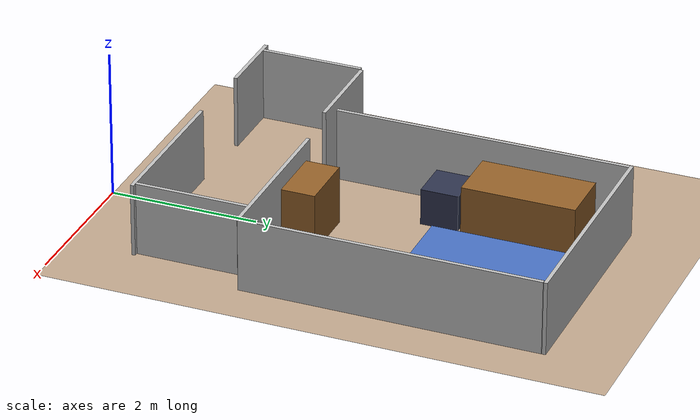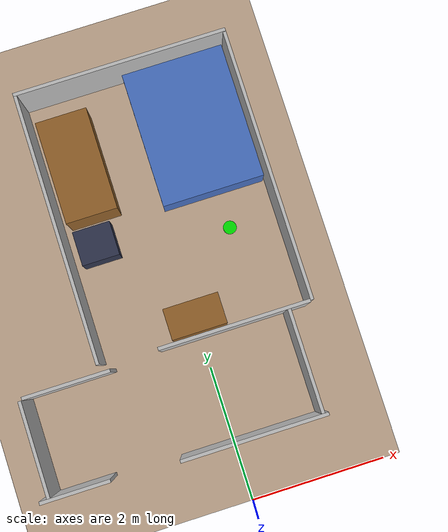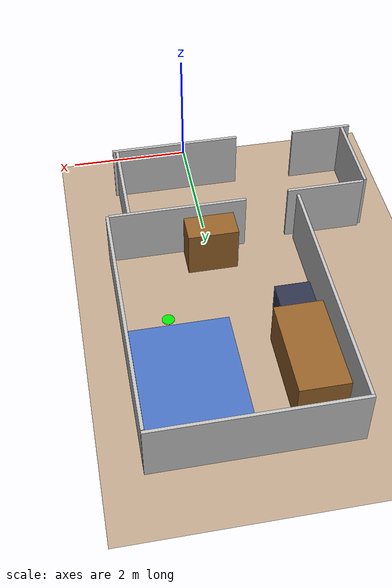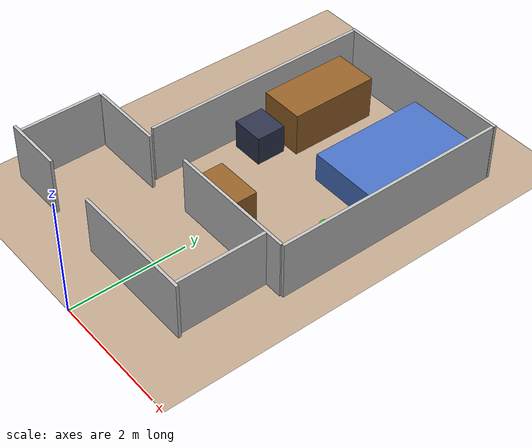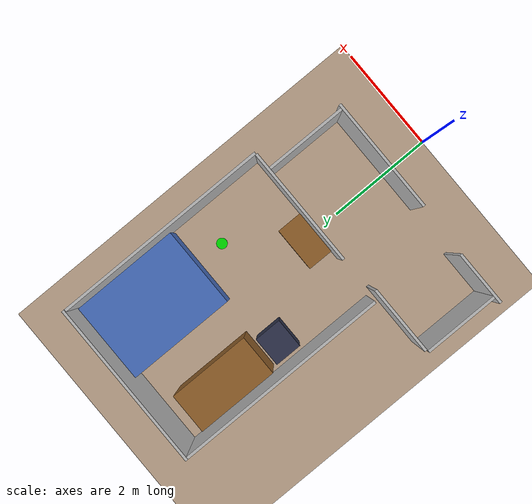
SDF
<?xml version="1.0"?>
<sdf version="1.9">
  <world name="bedroom">

    <physics name="default" type="ode">
      <real_time_update_rate>1000</real_time_update_rate>
      <max_step_size>0.001</max_step_size>
    </physics>

    <plugin filename="gz-sim-physics-system"
            name="gz::sim::systems::Physics"/>
    <plugin filename="gz-sim-sensors-system"
            name="gz::sim::systems::Sensors">
      <render_engine>ogre2</render_engine>
    </plugin>
    <plugin filename="gz-sim-scene-broadcaster-system"
            name="gz::sim::systems::SceneBroadcaster"/>
    <plugin filename="gz-sim-user-commands-system"
            name="gz::sim::systems::UserCommands"/>
    <plugin filename="gz-sim-imu-system"
            name="gz::sim::systems::Imu"/>

    <light name="sun" type="directional">
      <cast_shadows>false</cast_shadows>
      <pose>0 4 10 0 0 0</pose>
      <diffuse>0.8 0.8 0.8 1</diffuse>
      <specular>0.2 0.2 0.2 1</specular>
      <direction>-0.5 0.1 -0.9</direction>
    </light>

    <!-- Floor covering full map area X[-3.0,2.0] Y[0.2,7.3] -->
    <model name="floor">
      <static>true</static>
      <pose>-0.5 3.75 0 0 0 0</pose>
      <link name="link">
        <collision name="c">
          <geometry><plane><normal>0 0 1</normal><size>5.5 7.5</size></plane></geometry>
        </collision>
        <visual name="v">
          <geometry><plane><normal>0 0 1</normal><size>5.5 7.5</size></plane></geometry>
          <material>
            <ambient>0.60 0.52 0.42 1</ambient>
            <diffuse>0.75 0.65 0.55 1</diffuse>
          </material>
        </visual>
      </link>
    </model>

    <!-- ═══ HALLWAY WALLS ══════════════════════════════════════════════════ -->

    <model name="Hallway_West">
      <static>true</static>
      <pose>-2.6435 1.6740 0.5 0 0 0</pose>
      <link name="link">
        <collision name="c"><geometry><box><size>0.050 1.381 1.0</size></box></geometry></collision>
        <visual name="v">
          <geometry><box><size>0.050 1.381 1.0</size></box></geometry>
          <material>
            <ambient>0.60 0.60 0.60 1</ambient>
            <diffuse>0.75 0.75 0.75 1</diffuse>
          </material>
        </visual>
      </link>
    </model>

    <model name="Hallway_East">
      <static>true</static>
      <pose>1.2805 1.6930 0.5 0 0 0</pose>
      <link name="link">
        <collision name="c"><geometry><box><size>0.050 1.507 1.0</size></box></geometry></collision>
        <visual name="v">
          <geometry><box><size>0.050 1.507 1.0</size></box></geometry>
          <material>
            <ambient>0.60 0.60 0.60 1</ambient>
            <diffuse>0.75 0.75 0.75 1</diffuse>
          </material>
        </visual>
      </link>
    </model>

    <model name="Hallway_South_W">
      <static>true</static>
      <pose>-2.2747 0.9584 0.5 0 0 0</pose>
      <link name="link">
        <collision name="c"><geometry><box><size>1.016 0.050 1.0</size></box></geometry></collision>
        <visual name="v">
          <geometry><box><size>1.016 0.050 1.0</size></box></geometry>
          <material>
            <ambient>0.60 0.60 0.60 1</ambient>
            <diffuse>0.75 0.75 0.75 1</diffuse>
          </material>
        </visual>
      </link>
    </model>

    <model name="Hallway_South_E">
      <static>true</static>
      <pose>0.2863 0.9138 0.5 0 0 0</pose>
      <link name="link">
        <collision name="c"><geometry><box><size>2.140 0.050 1.0</size></box></geometry></collision>
        <visual name="v">
          <geometry><box><size>2.140 0.050 1.0</size></box></geometry>
          <material>
            <ambient>0.60 0.60 0.60 1</ambient>
            <diffuse>0.75 0.75 0.75 1</diffuse>
          </material>
        </visual>
      </link>
    </model>

    <!-- ═══ BEDROOM WALLS ═════════════════════════════════════════════════ -->

    <model name="Wall_South_W">
      <static>true</static>
      <pose>-1.9686 2.3887 0.5 0 0 0</pose>
      <link name="link">
        <collision name="c"><geometry><box><size>1.274 0.050 1.0</size></box></geometry></collision>
        <visual name="v">
          <geometry><box><size>1.274 0.050 1.0</size></box></geometry>
          <material>
            <ambient>0.60 0.60 0.60 1</ambient>
            <diffuse>0.75 0.75 0.75 1</diffuse>
          </material>
        </visual>
      </link>
    </model>

    <model name="Wall_South_E">
      <static>true</static>
      <pose>0.4914 2.4706 0.5 0 0 0</pose>
      <link name="link">
        <collision name="c"><geometry><box><size>2.217 0.050 1.0</size></box></geometry></collision>
        <visual name="v">
          <geometry><box><size>2.217 0.050 1.0</size></box></geometry>
          <material>
            <ambient>0.60 0.60 0.60 1</ambient>
            <diffuse>0.75 0.75 0.75 1</diffuse>
          </material>
        </visual>
      </link>
    </model>

    <model name="Wall_North">
      <static>true</static>
      <pose>0.0760 6.5020 0.5 0 0 0</pose>
      <link name="link">
        <collision name="c"><geometry><box><size>3.148 0.050 1.0</size></box></geometry></collision>
        <visual name="v">
          <geometry><box><size>3.148 0.050 1.0</size></box></geometry>
          <material>
            <ambient>0.60 0.60 0.60 1</ambient>
            <diffuse>0.75 0.75 0.75 1</diffuse>
          </material>
        </visual>
      </link>
    </model>

    <model name="Wall_East">
      <static>true</static>
      <pose>1.6250 4.4699 0.5 0 0 0</pose>
      <link name="link">
        <collision name="c"><geometry><box><size>0.050 4.000 1.0</size></box></geometry></collision>
        <visual name="v">
          <geometry><box><size>0.050 4.000 1.0</size></box></geometry>
          <material>
            <ambient>0.60 0.60 0.60 1</ambient>
            <diffuse>0.75 0.75 0.75 1</diffuse>
          </material>
        </visual>
      </link>
    </model>

    <model name="Wall_West">
      <static>true</static>
      <pose>-1.4730 4.4960 0.5 0 0 0</pose>
      <link name="link">
        <collision name="c"><geometry><box><size>0.050 3.962 1.0</size></box></geometry></collision>
        <visual name="v">
          <geometry><box><size>0.050 3.962 1.0</size></box></geometry>
          <material>
            <ambient>0.60 0.60 0.60 1</ambient>
            <diffuse>0.75 0.75 0.75 1</diffuse>
          </material>
        </visual>
      </link>
    </model>

    <!-- ═══ NAVIGATION TARGET MARKER ════════════════════════════════════ -->
    <model name="goal_marker">
      <static>true</static>
      <pose>0.9 3.90 0.0025 0 0 0</pose>
      <link name="link">
        <visual name="v">
          <geometry><cylinder><radius>0.10</radius><length>0.005</length></cylinder></geometry>
          <material>
            <ambient>0.0 0.6 0.0 1</ambient>
            <diffuse>0.0 0.9 0.0 1</diffuse>
          </material>
        </visual>
      </link>
    </model>

    <!-- ═══ FURNITURE ══════════════════════════════════════════════════════ -->

    <!-- Dresser: warm brown -->
    <model name="Dresser">
      <static>true</static>
      <pose>0.0074 2.7583 0.40 0 0 0</pose>
      <link name="link">
        <collision name="c"><geometry><box><size>0.813 0.457 0.80</size></box></geometry></collision>
        <visual name="v">
          <geometry><box><size>0.813 0.457 0.80</size></box></geometry>
          <material>
            <ambient>0.42 0.28 0.12 1</ambient>
            <diffuse>0.58 0.38 0.16 1</diffuse>
          </material>
        </visual>
      </link>
    </model>

    <!-- Bed: medium blue -->
    <model name="Bed">
      <static>true</static>
      <pose>0.8130 5.4360 0.25 0 0 0</pose>
      <link name="link">
        <collision name="c"><geometry><box><size>1.524 2.032 0.50</size></box></geometry></collision>
        <visual name="v">
          <geometry><box><size>1.524 2.032 0.50</size></box></geometry>
          <material>
            <ambient>0.20 0.32 0.58 1</ambient>
            <diffuse>0.28 0.44 0.76 1</diffuse>
          </material>
        </visual>
      </link>
    </model>

    <!-- Desk: warm brown (same family as dresser) -->
    <model name="Desk">
      <static>true</static>
      <pose>-0.9590 5.3240 0.375 0 0 0</pose>
      <link name="link">
        <collision name="c"><geometry><box><size>0.762 1.524 0.75</size></box></geometry></collision>
        <visual name="v">
          <geometry><box><size>0.762 1.524 0.75</size></box></geometry>
          <material>
            <ambient>0.42 0.28 0.12 1</ambient>
            <diffuse>0.58 0.38 0.16 1</diffuse>
          </material>
        </visual>
      </link>
    </model>

    <!-- PC Tower: dark blue-grey (computer-ish) -->
    <model name="PC_Tower">
      <static>true</static>
      <pose>-1.0360 4.2050 0.25 0 0 0</pose>
      <link name="link">
        <collision name="c"><geometry><box><size>0.559 0.508 0.50</size></box></geometry></collision>
        <visual name="v">
          <geometry><box><size>0.559 0.508 0.50</size></box></geometry>
          <material>
            <ambient>0.12 0.14 0.20 1</ambient>
            <diffuse>0.18 0.20 0.30 1</diffuse>
          </material>
        </visual>
      </link>
    </model>

  </world>
</sdf>
